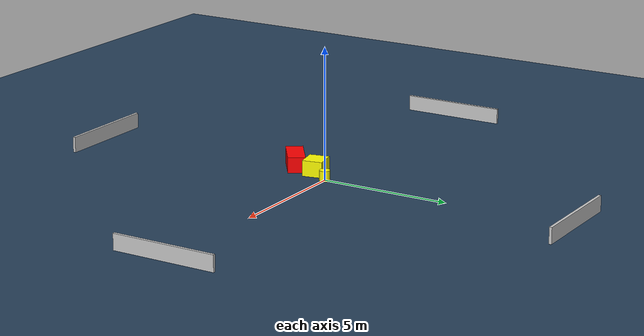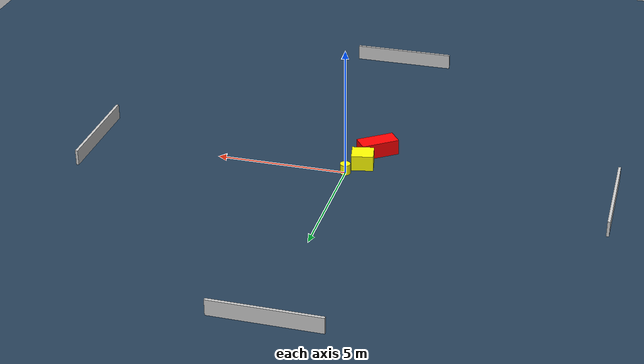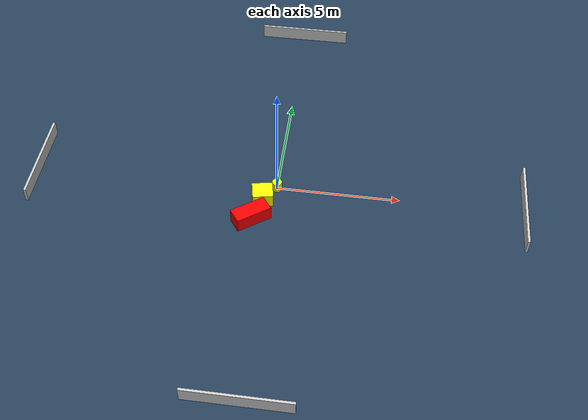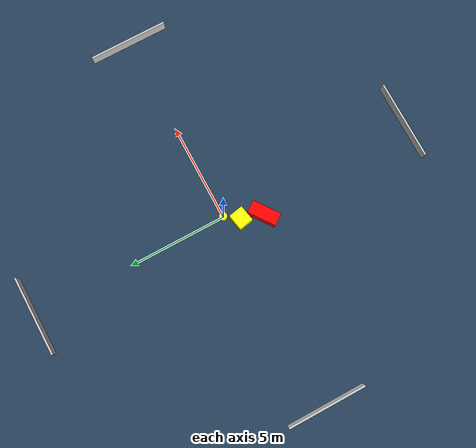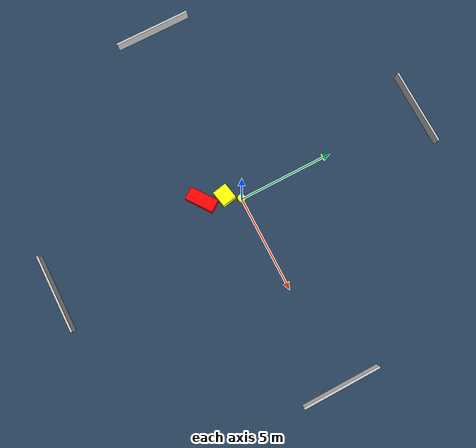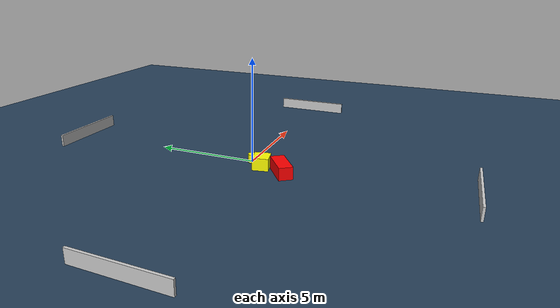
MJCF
<?xml version="1.0" ?>
<mujoco model="generated_environment">
  <option timestep="0.01" integrator="RK4" cone="elliptic"/>
  <default>
    <geom density="1"/>
  </default>
  <asset>
    <texture builtin="gradient" height="3072" name="skybox" rgb1="0.3 0.5 0.7" rgb2="0 0 0" type="skybox" width="512"/>
    <texture builtin="checker" height="300" name="groundplane" rgb1="0.2 0.3 0.4" rgb2="0.1 0.2 0.3" type="2d" width="300"/>
    <material name="groundplane" reflectance="0.2" texrepeat="5 5" texture="groundplane"/>
  </asset>
  <worldbody>
    <light dir="0 0 -1" directional="true" pos="0 0 1.5"/>
    <geom condim="3" friction="0.5 0.005 0.001" material="groundplane" name="floor" pos="0 0 0" size="0 0 0.05" type="plane"/>
    <body name="walls">
      <geom name="wall_1" condim="4" pos="-10.0 0.0 0.3" rgba="0.800000011920929 0.800000011920929 0.800000011920929 1.0" size="0.05 2.0 0.3" type="box"/>
      <geom name="wall_2" condim="4" pos="10.0 0.0 0.3" rgba="0.800000011920929 0.800000011920929 0.800000011920929 1.0" size="0.05 2.0 0.3" type="box"/>
      <geom name="wall_3" condim="4" pos="0.0 -10.0 0.3" rgba="0.800000011920929 0.800000011920929 0.800000011920929 1.0" size="2.0 0.05 0.3" type="box"/>
      <geom name="wall_4" condim="4" pos="0.0 10.0 0.3" rgba="0.800000011920929 0.800000011920929 0.800000011920929 1.0" size="2.0 0.05 0.3" type="box"/>
    </body>
    <body name="robot">
      <joint name="joint_x" type="slide" pos="0 0 0" axis="1 0 0"/>
      <joint name="joint_y" type="slide" pos="0 0 0" axis="0 1 0"/>
      <geom name="robot" type="cylinder" pos="0.0 0.0 0.2" size="0.2 0.2 0.0" mass="5.0" friction="1.0 0.005 0.0001" condim="4" rgba="1.0 1.0 0.0 1.0"/>
    </body>
    <body name="obstacle_1_movable">
      <geom name="obstacle_1_movable" condim="4" pos="-0.5002182125682352 -0.689065283968162 0.3" euler="0 0 101.03901072582413" friction="0.0 0.005 0.001" rgba="1.0 1.0 0.0 1.0" size="0.3813182293702692 0.4172959757529534 0.3" type="box" mass="0.1"/>
      <joint type="free"/>
    </body>
    <body name="obstacle_2_static">
      <geom name="obstacle_2_static" condim="4" pos="-0.8145649738387697 -1.778243823687006 0.3" euler="0 0 125.86258699018663" friction="0.0 0.005 0.001" rgba="1.0 0.0 0.0 1.0" size="0.33034699957373026 0.7397243313397319 0.3" type="box"/>
    </body>
  </worldbody>
  <actuator>
    <motor name="actuator_x" joint="joint_x" gear="1" ctrlrange="-1 1"/>
    <motor name="actuator_y" joint="joint_y" gear="1" ctrlrange="-1 1"/>
  </actuator>
</mujoco>
